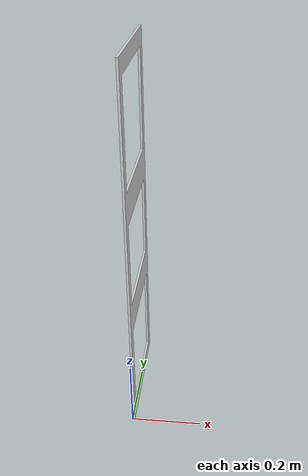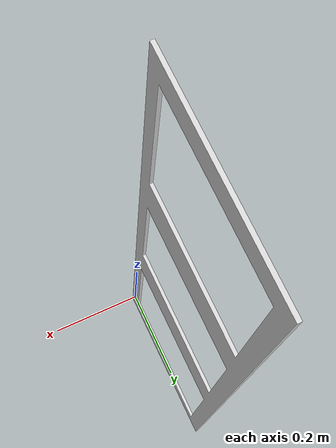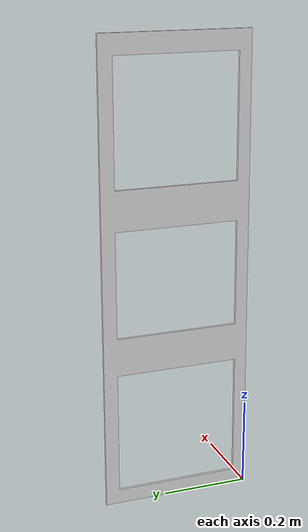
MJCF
<mujoco model="front_right_face">
  <default>
    <default class="visual">
      <geom group="2" type="mesh" contype="0" conaffinity="0"/>
    </default>
    <default class="collision">
      <geom group="3" type="mesh"/>
    </default>
  </default>
  <asset>
    <material name="mtl_front_right_face" specular="0.20000000000000004" shininess="1.0" rgba="0.85098039 0.85098039 0.85098039 1.0"/>
    <mesh file="front_right_face.obj"/>
  </asset>
  <worldbody>
    <body name="front_right_face">
      <geom material="mtl_front_right_face" mesh="front_right_face" class="visual"/>
      <geom mesh="front_right_face" class="collision"/>
    </body>
  </worldbody>
</mujoco>
